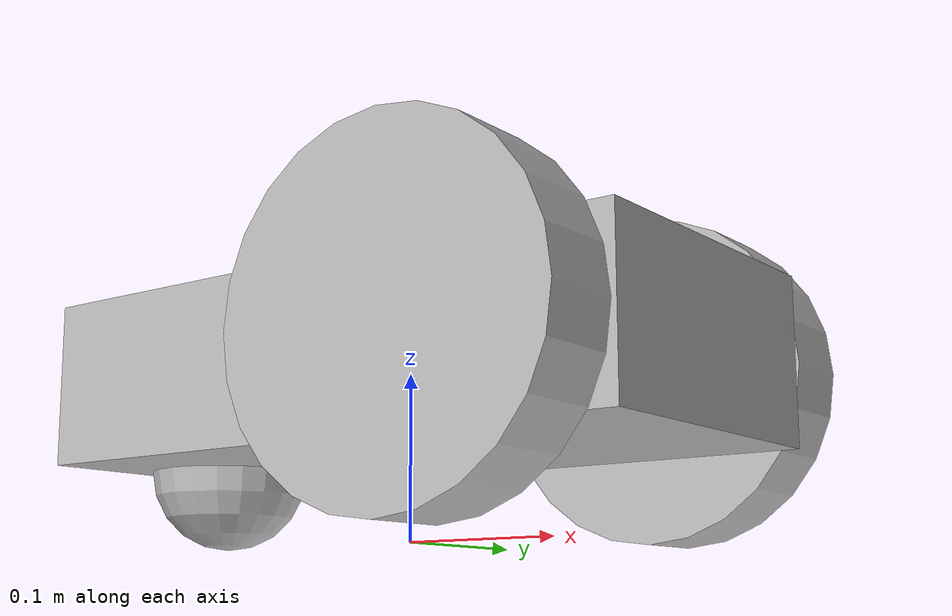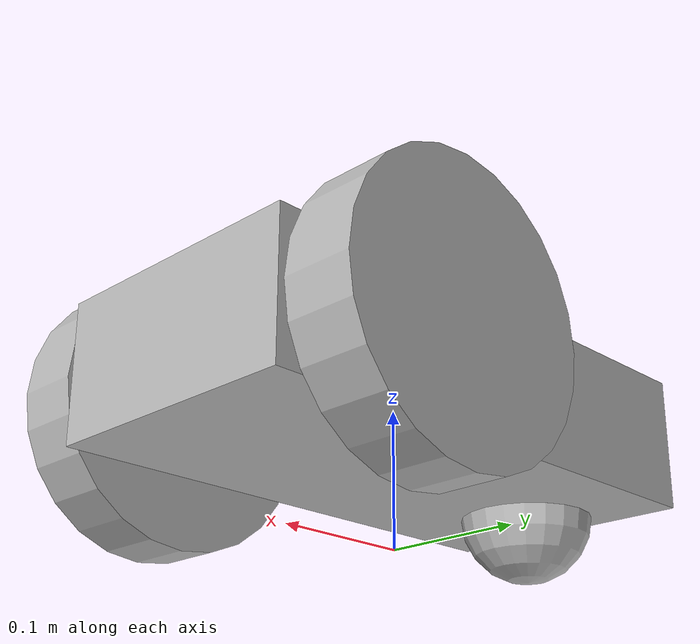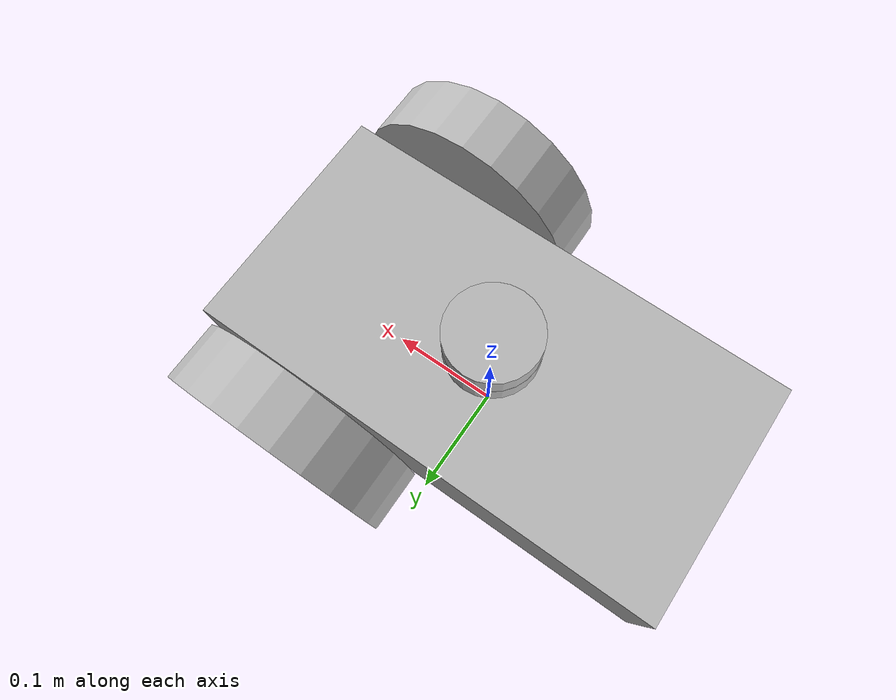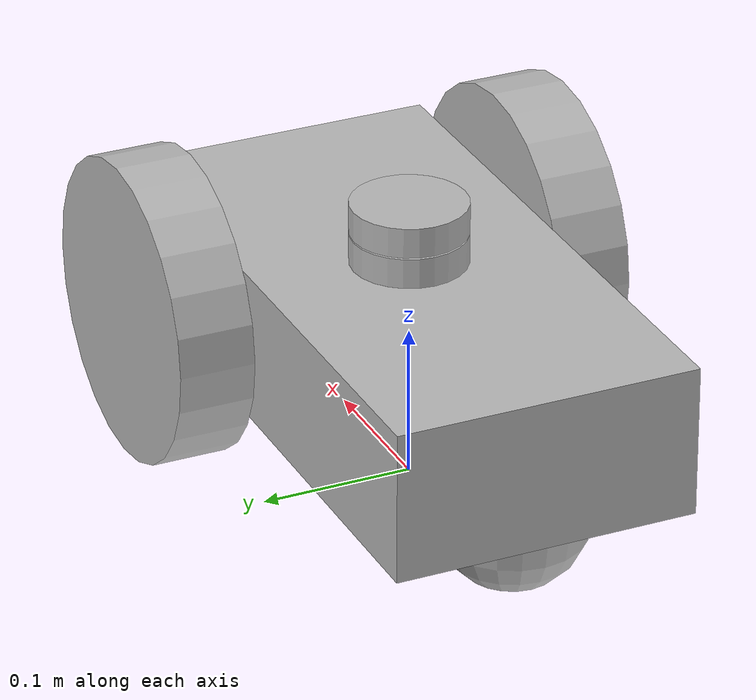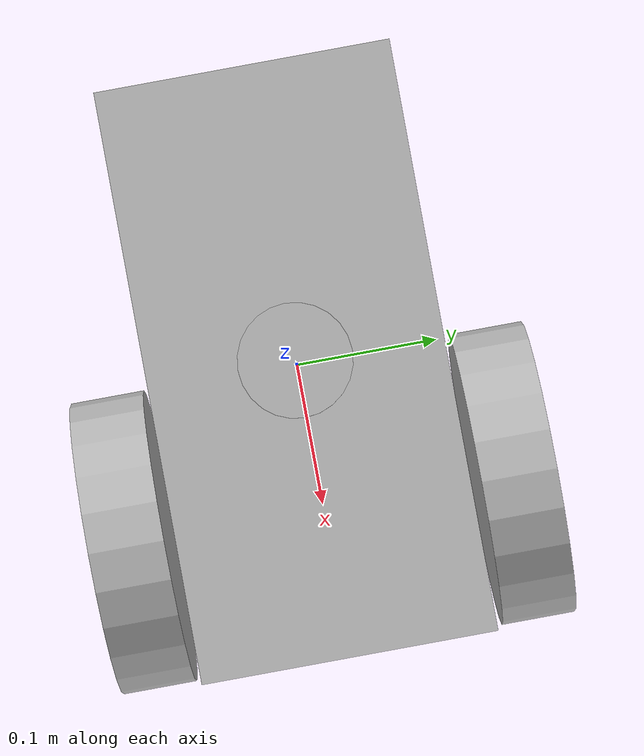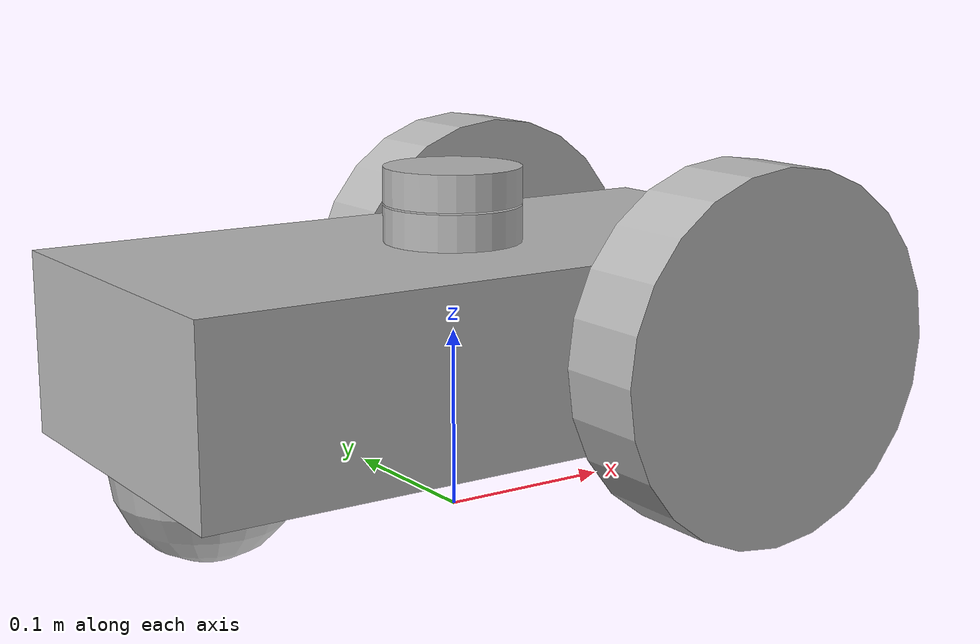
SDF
<?xml version='1.0'?>
<sdf version='1.4'>
  <model name="my_robot">
     <static>false</static>
     <link name='chassis'>
        <pose>0 0 0.1 0 0 0</pose>
        <inertial>
           <mass>10.0</mass>
           <pose>0.0 0 0.1 0 0 0</pose>
           <inertia>
              <ixx>0.5</ixx>
              <iyy>1.0</iyy>
              <izz>0.1</izz>
           </inertia>
        </inertial>
        <collision name='collision'>
            <geometry>
                <box>
                   <size>0.4 0.2 0.1</size>
                </box>
            </geometry>
        </collision>
        <visual name='visual'>
           <pose>0 0 0.0 0 0 0</pose>
           <geometry>
              <box>
                 <size>0.4 0.2 0.1</size>
              </box>
           </geometry>
         </visual>
         <collision name='caster_collision'>
            <pose>-0.15 0 -0.05 0 0 0</pose>
            <geometry>
               <sphere>
                  <radius>.05</radius>
               </sphere>
            </geometry>
            <surface>
              <friction>
                 <ode>
                    <mu>0</mu>
                    <mu2>0</mu2>
                    <slip1>1.0</slip1>
                    <slip2>1.0</slip2>
                 </ode>
              </friction>
           </surface>
        </collision>
        <visual name='caster_visual'>
           <pose>-0.15 0 -0.05 0 0 0</pose>
           <geometry>
              <sphere>
                 <radius>.05</radius>
              </sphere>
           </geometry>
         </visual>
     </link>

     <link name="right_wheel">
        <pose>0.1 0.13 0.1 0 1.5707 1.5707</pose>
        <inertial>
           <pose>0.1 0.13 0.1 0 1.5707 1.5707</pose>
           <mass>1.0</mass>
           <inertia>
              <ixx>0.0045</ixx>
              <iyy>0.005</iyy>
              <izz>0.0045</izz>
           </inertia>
        </inertial>
        <collision name="collision">
          <geometry>
              <cylinder>
                 <radius>.1</radius>
                 <length>.05</length>
              </cylinder>
          </geometry>
            <surface>
              <friction>
                 <ode>
                    <mu>10</mu>
                    <mu2>10</mu2>
                 </ode>
              </friction>
           </surface>
        </collision>
        <visual name="visual">
          <geometry>
              <cylinder>
                 <radius>.1</radius>
                 <length>.05</length>
              </cylinder>
          </geometry>
        </visual>
      </link>

      <link name="left_wheel">
        <pose>0.1 -0.13 0.1 0 1.5707 1.5707</pose>
        <inertial>
           <pose>0.1 0.13 0.1 0 1.5707 1.5707</pose>
           <mass>1.0</mass>
           <inertia>
              <ixx>0.0045</ixx>
              <iyy>0.005</iyy>
              <izz>0.0045</izz>
           </inertia>
        </inertial>
        <collision name="collision">
           <geometry>
              <cylinder>
                 <radius>0.1</radius>
                 <length>0.05</length>
              </cylinder>
           </geometry>
            <surface>
              <friction>
                 <ode>
                    <mu>10</mu>
                    <mu2>10</mu2>
                 </ode>
              </friction>
           </surface>
        </collision>
        <visual name="visual">
           <geometry>
              <cylinder>
                 <radius>0.1</radius>
                 <length>0.05</length>
             </cylinder>
           </geometry>
        </visual>
      </link>
      <include>
      <uri>model://rplidar</uri>
      <pose>0 0 0.15 0 0 0</pose>
    </include>
    <joint name="rplidar_joint" type="fixed">
      <child>rplidar::base</child>
      <parent>chassis</parent>
    </joint>

      <joint type="revolute" name="left_wheel_joint">
         <pose>0 0 -0.03 0 0 0</pose>
         <child>left_wheel</child>
         <parent>chassis</parent>
         <axis>
            <xyz>0 1 0</xyz>
         </axis>
      </joint>

      <joint type="revolute" name="right_wheel_joint">
         <pose>0 0 0.03 0 0 0</pose>
         <child>right_wheel</child>
         <parent>chassis</parent>
         <axis>
            <xyz>0 1 0</xyz>
         </axis>
      </joint>

      <plugin name="differential_drive_controller" filename="libgazebo_ros_diff_drive.so">
         <alwaysOn>true</alwaysOn>
         <updateRate>20</updateRate>
         <leftJoint>left_wheel_joint</leftJoint>
         <rightJoint>right_wheel_joint</rightJoint>
         <wheelSeparation>0.4</wheelSeparation>
         <wheelDiameter>0.1</wheelDiameter>
         <wheelTorque>20</wheelTorque>
         <commandTopic>cmd_vel</commandTopic>
         <odometryTopic>odom</odometryTopic>
         <odometryFrame>odom</odometryFrame>
         <publishTf>1</publishTf>
         <publishWheelJointState>true</publishWheelJointState>
         <robotBaseFrame>chassis</robotBaseFrame>
      </plugin>

   </model>
</sdf>

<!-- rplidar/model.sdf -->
<sdf version="1.5">
<model name="rplidar">
<!-- Give the base link a unique name -->
<link name="base">

    <!-- Offset the base by half the lenght of the cylinder -->
    <pose>0 0 0.01 0 0 0</pose>

    <collision name="base_collision">
      <geometry>
        <cylinder>
          <!-- Radius and length provided by Slamtec -->
          <radius>0.038</radius>
          <length>0.02</length>
        </cylinder>
      </geometry>
    </collision>

    <!-- The visual is mostly a copy of the collision -->
    <visual name="base_visual">
      <geometry>
        <cylinder>
          <radius>0.038</radius>
          <length>0.02</length>
        </cylinder>
      </geometry>
    </visual>
  </link>
  <!-- Give the base link a unique name -->
  <link name="top">
    <!-- Add a ray sensor, and give it a name -->
    <sensor type="ray" name="sensor">

      <!-- Position the ray sensor based on the specification. Also rotate
          it by 90 degrees around the Z-axis to become Horizontal -->
      <pose>0 0 0.002 0 0 1.5707</pose>

      <!-- Enable visualization to see the rays in the GUI -->
      <visualize>true</visualize>

  <topic>range</topic>

      <!-- Set the update rate of the sensor -->
      <update_rate>30</update_rate>
      <ray>
        <noise>
          <!-- Use gaussian noise -->
          <type>gaussian</type>
          <mean>0.0</mean>
          <stddev>0.02</stddev>
        </noise>

        <!-- The scan element contains the horizontal and vertical beams.
            We are leaving out the vertical beams. -->
        <scan>

          <!-- The horizontal beams -->
          <horizontal>
            <!-- The rplidar has 120 beams(samples) -->
            <samples>120</samples>

            <resolution>1</resolution>

            <!-- Minimum angle in radians -->
            <min_angle>0</min_angle>

            <!-- Maximum angle in radians -->
            <max_angle>6.28</max_angle>
          </horizontal>
        </scan>

        <!-- Range defines characteristics of an individual beam -->
        <range>

          <!-- Minimum distance of the beam -->
          <min>0.15</min>

          <!-- Maximum distance of the beam -->
          <max>12</max>

          <!-- Linear resolution of the beam -->
          <resolution>0.02</resolution>
        </range>
      </ray>
      <plugin name="sensor_plugin" filename="libgazebo_ros_laser.so">
    <topicName>/my_car/rplidar/scan</topicName>
    <frameName>/my_robot/odom</frameName>
  </plugin>
    </sensor>

    <!-- Vertically offset the top cylinder by the length of the bottom
        cylinder and half the length of this cylinder. -->
    <pose>0 0 0.031 0 0 0</pose>
    <collision name="top_collision">
      <geometry>
        <cylinder>
          <!-- Radius and length provided by Velodyne -->
          <radius>0.038</radius>
          <length>0.02</length>
        </cylinder>
      </geometry>
    </collision>

    <!-- The visual is mostly a copy of the collision -->
    <visual name="top_visual">
      <geometry>
        <cylinder>
          <radius>0.038</radius>
          <length>0.02</length>
        </cylinder>
      </geometry>
    </visual>
  </link>
  <!-- Each joint must have a unique name -->
  <joint type="revolute" name="joint">
    <!-- Position the joint at the bottom of the top link -->
    <pose>0 0 -0.016 0 0 0</pose>

    <!-- Use the base link as the parent of the joint -->
    <parent>base</parent>

    <!-- Use the top link as the child of the joint -->
    <child>top</child>

    <!-- The axis defines the joint's degree of freedom -->
    <axis>

      <!-- Revolve around the z-axis -->
      <xyz>0 0 1</xyz>

      <!-- Limit refers to the range of motion of the joint -->
      <limit>

        <!-- Use a very large number to indicate a continuous revolution -->
        <lower>-10000000000000000</lower>
        <upper>10000000000000000</upper>
      </limit>
    </axis>
  </joint>
</model>

</sdf>
